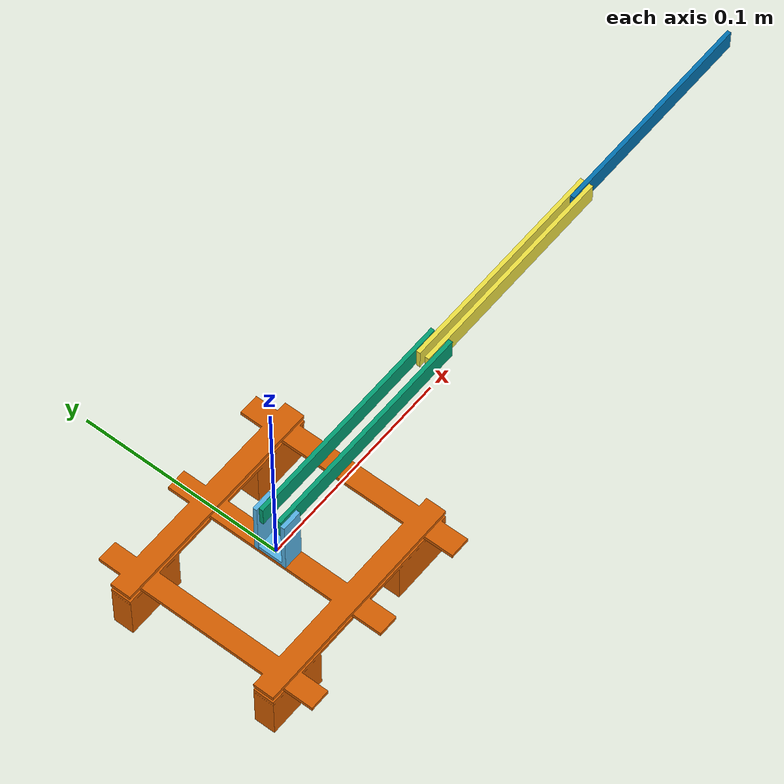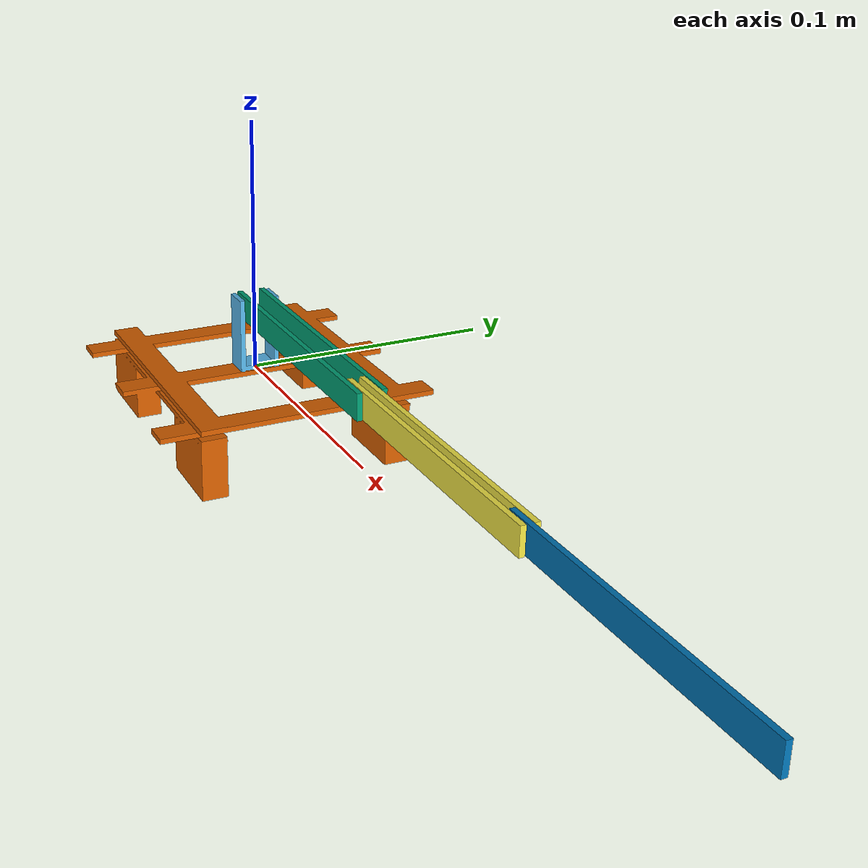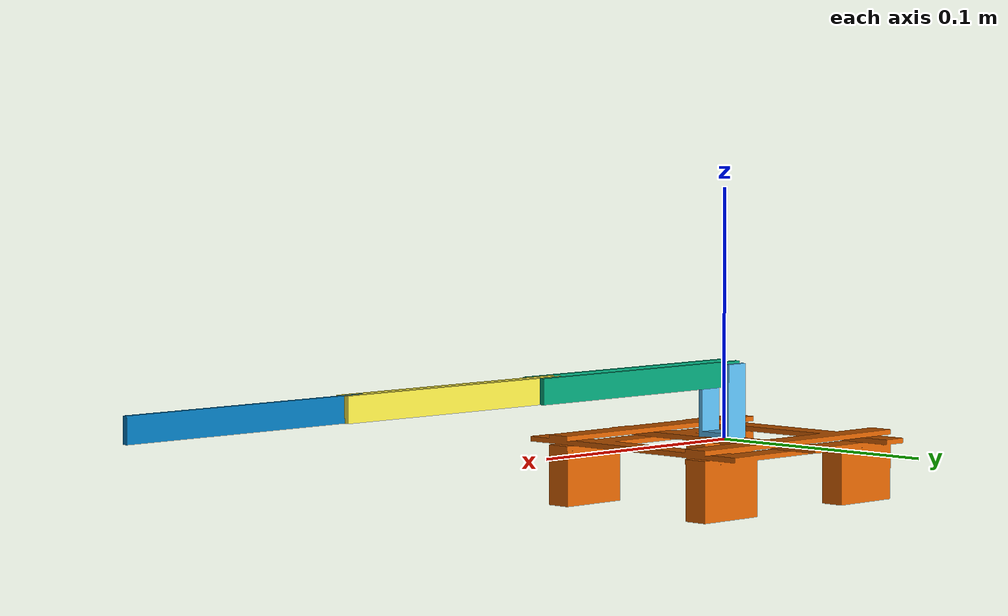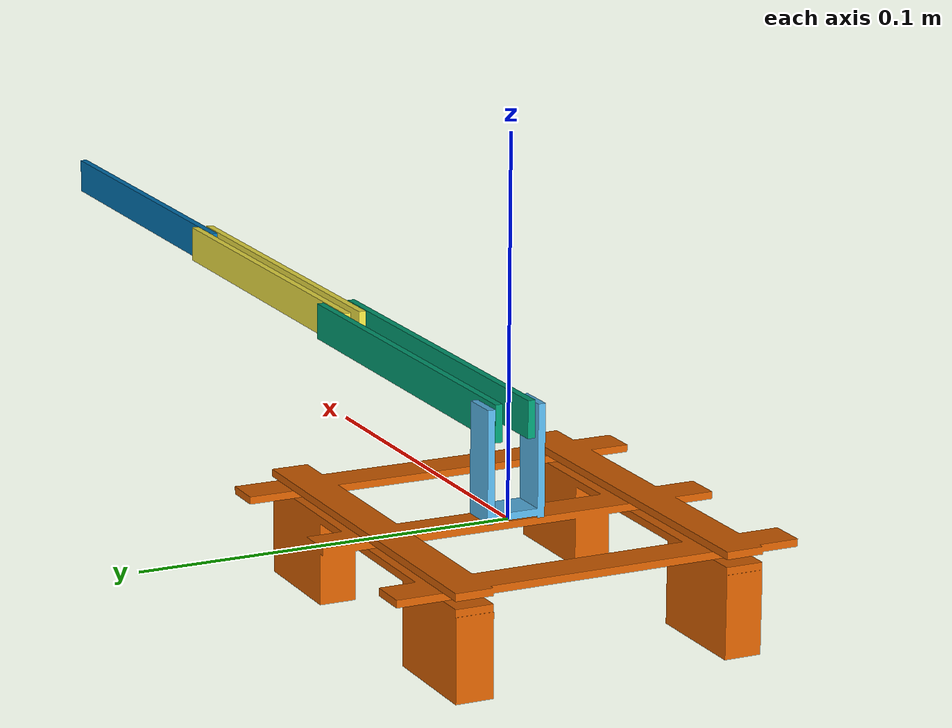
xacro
<?xml version="1.0"?>
<!-- Revolute-Revolute Manipulator -->
<!--
Copied and modified from ROS1 example -
https://github.com/ros-simulation/gazebo_ros_demos/blob/kinetic-devel/rrbot_description/urdf/rrbot.xacro
-->
<robot xmlns:xacro="http://www.ros.org/wiki/xacro" name="arm">
    <xacro:arg name="prefix" default="" />
    <xacro:arg name="use_gazebo" default="false" />

    <!-- Import RRBot macro -->
    <xacro:include
        filename="$(find simple_arm)/rrbot/urdf/arm_description.urdf.xacro" />

    <!-- Import Rviz colors -->
    <xacro:include
        filename="$(find simple_arm)/rrbot/urdf/arm.materials.xacro" />

    <!-- Import RRBot ros2_control description -->
    <xacro:include
        filename="$(find simple_arm)/ros2_control/arm.ros2_control.xacro" />

    <!-- Used for fixing robot -->
    <link name="world" />

    <xacro:rrbot parent="world" prefix="$(arg prefix)">
        <origin xyz="0 0 0" rpy="0 0 0" />
    </xacro:rrbot>

    <xacro:rrbot_ros2_control
        name="RRBot" prefix="$(arg prefix)" use_gazebo="$(arg use_gazebo)" />

    <xacro:if value="$(arg use_gazebo)">
        <!-- Import Gazebo Classic definitions + plugin -->
        <xacro:include filename="$(find simple_arm)/gazebo/rrbot.gazebo.xacro" />
        <xacro:rrbot_gazebo prefix="$(arg prefix)" />
    </xacro:if>
</robot>

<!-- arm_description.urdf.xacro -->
<robot xmlns:xacro="http://www.ros.org/wiki/xacro">

  <xacro:macro name="rrbot" params="parent prefix *origin">
    <joint name="joint0" type="revolute">
      <limit lower="-3.14000" upper="3.14000" effort="0.00000" velocity="0.00000" />
      <origin rpy="-3.14159 -0.00000 1.57062" xyz="0.00089 -0.00025 0.00205" />
      <parent link="link0" />
      <child link="link1" />
      <axis xyz="0.00000 0.00000 -1.00000" />
    </joint>
    <joint name="joint1" type="revolute">
      <limit lower="-3.14000" upper="3.14000" effort="0.00000" velocity="0.00000" />
      <origin rpy="1.57082 -0.00009 -1.57089" xyz="-0.00012 -0.00014 -0.02442" />
      <parent link="link1" />
      <child link="link2" />
      <axis xyz="0.00000 0.00000 -1.00000" />
    </joint>
    <joint name="joint2" type="revolute">
      <limit lower="-3.14000" upper="3.14000" effort="0.00000" velocity="0.00000" />
      <origin rpy="0.00000 0.00000 0.00000" xyz="-0.09876 0.00001 -0.00008" />
      <parent link="link2" />
      <child link="link3" />
      <axis xyz="0.00000 0.00000 -1.00000" />
    </joint>
    <joint name="joint3" type="revolute">
      <limit lower="-3.14000" upper="3.14000" effort="0.00000" velocity="0.00000" />
      <origin rpy="-0.00000 -0.00000 -0.00000" xyz="-0.09983 0.00001 -0.00027" />
      <parent link="link3" />
      <child link="link4" />
      <axis xyz="0.00000 0.00000 -1.00000" />
    </joint>
    <link name="link1">
      <inertial>
        <inertia ixx="0.00100" ixy="-0.00000" ixz="-0.00000" iyy="0.00100" iyz="0.00000"
          izz="0.00100" />
        <origin rpy="0.00000 0.00000 0.00000" xyz="-0.00000 -0.00000 -0.00000" />
        <mass value="0.20000" />
      </inertial>
      <visual>
      <origin rpy="-0.00000 -0.00000 -0.00000" xyz="-0.00000 0.00000 -0.00000"/>
      <geometry>
         <mesh filename="file://$(find simple_arm)/meshes/stl/Cube.019.stl" scale="1.00000 1.00000 1.00000" />
      </geometry>
    </visual>
    </link>
    <link name="link2">
      <inertial>
        <inertia ixx="0.00100" ixy="-0.00000" ixz="0.00000" iyy="0.00100" iyz="-0.00000"
          izz="0.00100" />
        <origin rpy="0.00000 0.00000 0.00000" xyz="-0.00000 0.00000 0.00000" />
        <mass value="0.20000" />
      </inertial>
      <visual>
        <origin rpy="-0.00002 -0.00000 0.00000" xyz="-0.00000 0.00000 -0.00000" />
        <geometry>
          <mesh filename="file://$(find simple_arm)/meshes/stl/Cube.010.stl" scale="1.00000 1.00000 1.00000" />
        </geometry>
      </visual>
    </link>
    <link name="link3">
      <inertial>
        <inertia ixx="0.00100" ixy="0.00000" ixz="0.00000" iyy="0.00100" iyz="0.00000" izz="0.00100" />
        <origin rpy="0.00000 0.00000 0.00000" xyz="-0.00000 -0.00000 0.00000" />
        <mass value="0.20000" />
      </inertial>
      <visual>
        <origin rpy="-0.00002 -0.00000 0.00000" xyz="-0.00000 -0.00000 -0.00000" />
        <geometry>
          <mesh filename="file://$(find simple_arm)/meshes/stl/Cube.013.stl" scale="1.00000 1.00000 1.00000" />
        </geometry>
      </visual>
    </link>
    <link name="link4">
      <inertial>
        <inertia ixx="0.00131" ixy="0.00000" ixz="0.00000" iyy="0.00131" iyz="0.00000" izz="0.00131"/>
        <origin rpy="0.00000 0.00000 0.00000" xyz="0.00084 -0.00000 0.00027"/>
        <mass value="0.20000"/>
      </inertial>
      <visual>
        <origin rpy="-0.00002 -0.00000 0.00000" xyz="-0.00000 0.00000 0.00000" />
        <geometry>
          <mesh filename="file://$(find simple_arm)/meshes/stl/Cube.014.stl" scale="1.00000 1.00000 1.00000" />
        </geometry>
      </visual>
    </link>
    <link name="link0">
      <inertial>
        <inertia ixx="0.00207" ixy="0.00000" ixz="0.00000" iyy="0.00207" iyz="0.00000" izz="0.00207"/>
        <origin rpy="0.00000 0.00000 0.00000" xyz="0.00000 -0.00000 0.00000"/>
        <mass value="0.30000"/>
      </inertial>
      <visual>
        <origin rpy="0.00000 0.00000 -0.00000" xyz="-0.00000 0.00000 0.00000" />
        <geometry>
          <mesh filename="file://$(find simple_arm)/meshes/stl/Cube.018.stl" scale="1.00000 1.00000 1.00000" />
        </geometry>
      </visual>
    </link>

    <joint name="base_joint" type="fixed">
      <origin xyz="0 0 0" rpy="0 0 0" />
      <parent link="${parent}" />
      <child link="link0" />
    </joint>

    </xacro:macro>
</robot>
